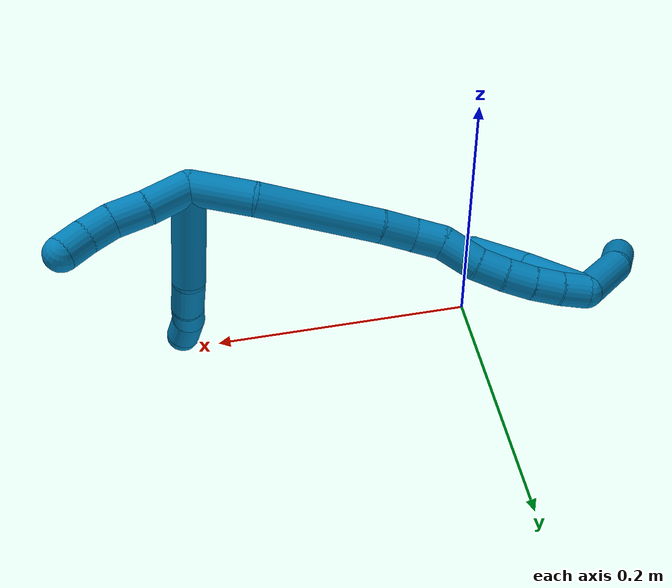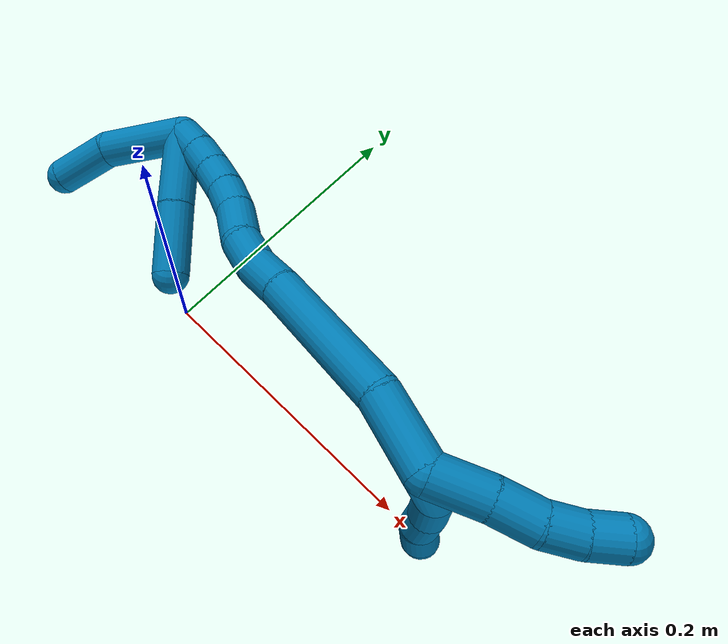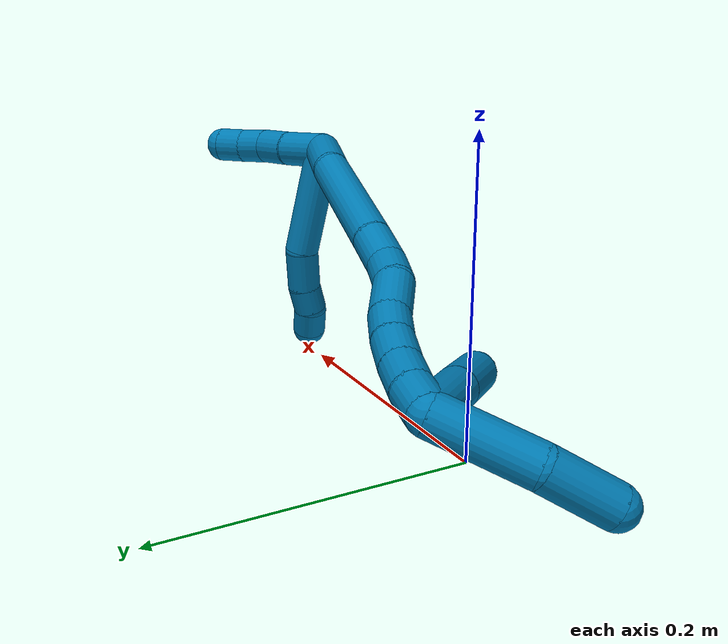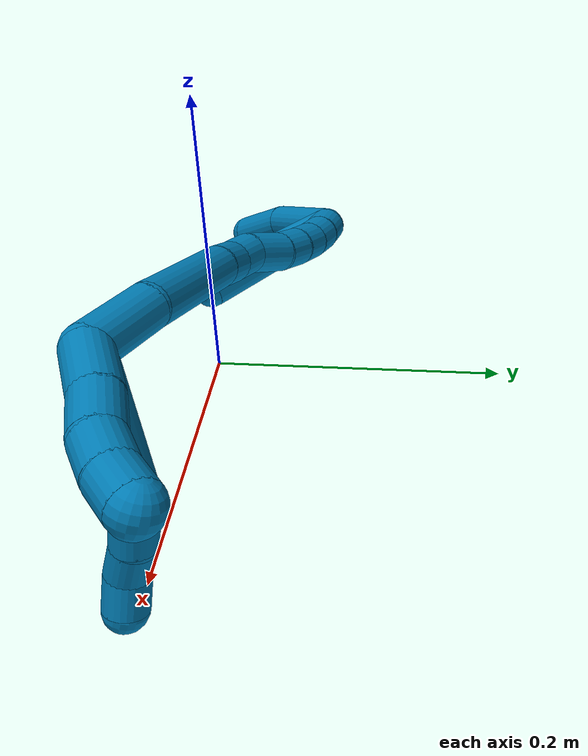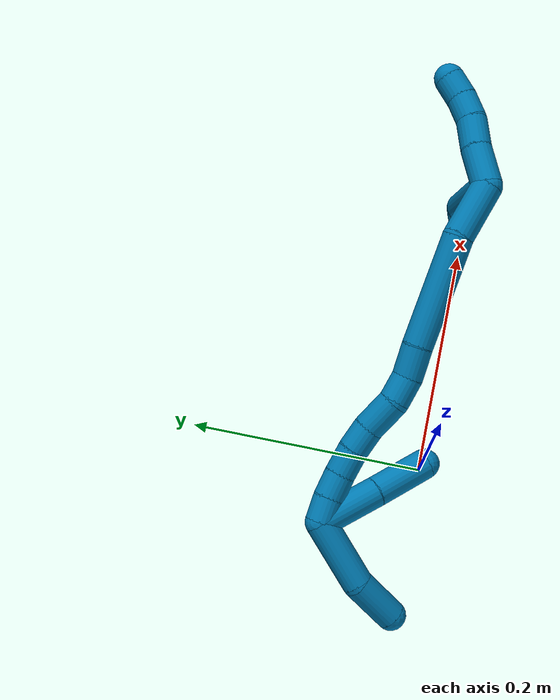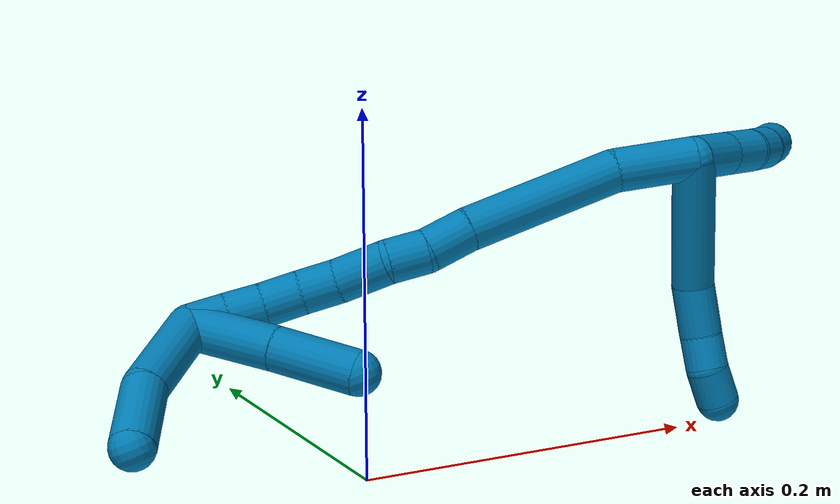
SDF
<sdf version="1.7">
 <world name="default">
  <model name="9">
   <static>0</static>
   <link name="9">
    <collision name="collision-cylinder-e_1_2_8">
     <pose>-0.004129 0.017704 -0.034888 -2.67202 -0.105142 0.433065</pose>
     <geometry><cylinder><radius>0.0125</radius><length>0.07868</length></cylinder></geometry>
     <surface>
      <friction><ode><mu>1.16</mu><mu2>1.16</mu2><slip1>0</slip1><slip2>0</slip2></ode></friction>
      <contact><ode><kp>1e+06</kp><kd>1</kd><max_vel>0</max_vel><min_depth>0.001</min_depth></ode></contact>
     </surface>
    </collision>
    <visual name="visual-cylinder-e_1_2_8">
     <pose>-0.004129 0.017704 -0.034888 -2.67202 -0.105142 0.433065</pose>
     <geometry><cylinder><radius>0.0125</radius><length>0.07868</length></cylinder></geometry>
     <material><ambient>0 0.490196 0.709804 1</ambient></material>
    </visual>
    <collision name="collision-cylinder-e_2_8_9">
     <pose>-0.010255 0.038195 -0.084708 -2.957 -0.13074 1.23116</pose>
     <geometry><cylinder><radius>0.0125</radius><length>0.03064</length></cylinder></geometry>
     <surface>
      <friction><ode><mu>1.16</mu><mu2>1.16</mu2><slip1>0</slip1><slip2>0</slip2></ode></friction>
      <contact><ode><kp>1e+06</kp><kd>1</kd><max_vel>0</max_vel><min_depth>0.001</min_depth></ode></contact>
     </surface>
    </collision>
    <visual name="visual-cylinder-e_2_8_9">
     <pose>-0.010255 0.038195 -0.084708 -2.957 -0.13074 1.23116</pose>
     <geometry><cylinder><radius>0.0125</radius><length>0.03064</length></cylinder></geometry>
     <material><ambient>0 0.490196 0.709804 1</ambient></material>
    </visual>
    <collision name="collision-cylinder-e_3_9_10">
     <pose>-0.01439 0.041214 -0.109407 -3.11795 -0.215432 2.92384</pose>
     <geometry><cylinder><radius>0.0125</radius><length>0.020003</length></cylinder></geometry>
     <surface>
      <friction><ode><mu>1.16</mu><mu2>1.16</mu2><slip1>0</slip1><slip2>0</slip2></ode></friction>
      <contact><ode><kp>1e+06</kp><kd>1</kd><max_vel>0</max_vel><min_depth>0.001</min_depth></ode></contact>
     </surface>
    </collision>
    <visual name="visual-cylinder-e_3_9_10">
     <pose>-0.01439 0.041214 -0.109407 -3.11795 -0.215432 2.92384</pose>
     <geometry><cylinder><radius>0.0125</radius><length>0.020003</length></cylinder></geometry>
     <material><ambient>0 0.490196 0.709804 1</ambient></material>
    </visual>
    <collision name="collision-cylinder-e_4_10_6">
     <pose>-0.015961 0.043403 -0.129309 -2.95077 0.054866 -0.558474</pose>
     <geometry><cylinder><radius>0.0125</radius><length>0.020677</length></cylinder></geometry>
     <surface>
      <friction><ode><mu>1.16</mu><mu2>1.16</mu2><slip1>0</slip1><slip2>0</slip2></ode></friction>
      <contact><ode><kp>1e+06</kp><kd>1</kd><max_vel>0</max_vel><min_depth>0.001</min_depth></ode></contact>
     </surface>
    </collision>
    <visual name="visual-cylinder-e_4_10_6">
     <pose>-0.015961 0.043403 -0.129309 -2.95077 0.054866 -0.558474</pose>
     <geometry><cylinder><radius>0.0125</radius><length>0.020677</length></cylinder></geometry>
     <material><ambient>0 0.490196 0.709804 1</ambient></material>
    </visual>
    <collision name="collision-cylinder-e_1_2_11">
     <pose>0.015001 0.006599 -0.003096 -2.00948 1.11849 -1.5557</pose>
     <geometry><cylinder><radius>0.0125</radius><length>0.033356</length></cylinder></geometry>
     <surface>
      <friction><ode><mu>1.16</mu><mu2>1.16</mu2><slip1>0</slip1><slip2>0</slip2></ode></friction>
      <contact><ode><kp>1e+06</kp><kd>1</kd><max_vel>0</max_vel><min_depth>0.001</min_depth></ode></contact>
     </surface>
    </collision>
    <visual name="visual-cylinder-e_1_2_11">
     <pose>0.015001 0.006599 -0.003096 -2.00948 1.11849 -1.5557</pose>
     <geometry><cylinder><radius>0.0125</radius><length>0.033356</length></cylinder></geometry>
     <material><ambient>0 0.490196 0.709804 1</ambient></material>
    </visual>
    <collision name="collision-cylinder-e_2_11_12">
     <pose>0.041936 0.016952 -0.008832 -2.18359 1.20363 -1.84671</pose>
     <geometry><cylinder><radius>0.0125</radius><length>0.025572</length></cylinder></geometry>
     <surface>
      <friction><ode><mu>1.16</mu><mu2>1.16</mu2><slip1>0</slip1><slip2>0</slip2></ode></friction>
      <contact><ode><kp>1e+06</kp><kd>1</kd><max_vel>0</max_vel><min_depth>0.001</min_depth></ode></contact>
     </surface>
    </collision>
    <visual name="visual-cylinder-e_2_11_12">
     <pose>0.041936 0.016952 -0.008832 -2.18359 1.20363 -1.84671</pose>
     <geometry><cylinder><radius>0.0125</radius><length>0.025572</length></cylinder></geometry>
     <material><ambient>0 0.490196 0.709804 1</ambient></material>
    </visual>
    <collision name="collision-cylinder-e_3_12_13">
     <pose>0.062805 0.025986 -0.013015 -1.85526 1.019 -1.28118</pose>
     <geometry><cylinder><radius>0.0125</radius><length>0.020985</length></cylinder></geometry>
     <surface>
      <friction><ode><mu>1.16</mu><mu2>1.16</mu2><slip1>0</slip1><slip2>0</slip2></ode></friction>
      <contact><ode><kp>1e+06</kp><kd>1</kd><max_vel>0</max_vel><min_depth>0.001</min_depth></ode></contact>
     </surface>
    </collision>
    <visual name="visual-cylinder-e_3_12_13">
     <pose>0.062805 0.025986 -0.013015 -1.85526 1.019 -1.28118</pose>
     <geometry><cylinder><radius>0.0125</radius><length>0.020985</length></cylinder></geometry>
     <material><ambient>0 0.490196 0.709804 1</ambient></material>
    </visual>
    <collision name="collision-cylinder-e_4_13_5">
     <pose>0.079688 0.037394 -0.014938 -1.63265 0.913061 -0.962962</pose>
     <geometry><cylinder><radius>0.0125</radius><length>0.020087</length></cylinder></geometry>
     <surface>
      <friction><ode><mu>1.16</mu><mu2>1.16</mu2><slip1>0</slip1><slip2>0</slip2></ode></friction>
      <contact><ode><kp>1e+06</kp><kd>1</kd><max_vel>0</max_vel><min_depth>0.001</min_depth></ode></contact>
     </surface>
    </collision>
    <visual name="visual-cylinder-e_4_13_5">
     <pose>0.079688 0.037394 -0.014938 -1.63265 0.913061 -0.962962</pose>
     <geometry><cylinder><radius>0.0125</radius><length>0.020087</length></cylinder></geometry>
     <material><ambient>0 0.490196 0.709804 1</ambient></material>
    </visual>
    <collision name="collision-cylinder-e_1_2_14">
     <pose>-0.021171 0.008146 0.005377 -0.987397 -1.13881 0.663503</pose>
     <geometry><cylinder><radius>0.0125</radius><length>0.046625</length></cylinder></geometry>
     <surface>
      <friction><ode><mu>1.16</mu><mu2>1.16</mu2><slip1>0</slip1><slip2>0</slip2></ode></friction>
      <contact><ode><kp>1e+06</kp><kd>1</kd><max_vel>0</max_vel><min_depth>0.001</min_depth></ode></contact>
     </surface>
    </collision>
    <visual name="visual-cylinder-e_1_2_14">
     <pose>-0.021171 0.008146 0.005377 -0.987397 -1.13881 0.663503</pose>
     <geometry><cylinder><radius>0.0125</radius><length>0.046625</length></cylinder></geometry>
     <material><ambient>0 0.490196 0.709804 1</ambient></material>
    </visual>
    <collision name="collision-cylinder-e_2_14_15">
     <pose>-0.086448 0.027696 0.0116 -1.4967 -1.31711 1.24605</pose>
     <geometry><cylinder><radius>0.0125</radius><length>0.09113</length></cylinder></geometry>
     <surface>
      <friction><ode><mu>1.16</mu><mu2>1.16</mu2><slip1>0</slip1><slip2>0</slip2></ode></friction>
      <contact><ode><kp>1e+06</kp><kd>1</kd><max_vel>0</max_vel><min_depth>0.001</min_depth></ode></contact>
     </surface>
    </collision>
    <visual name="visual-cylinder-e_2_14_15">
     <pose>-0.086448 0.027696 0.0116 -1.4967 -1.31711 1.24605</pose>
     <geometry><cylinder><radius>0.0125</radius><length>0.09113</length></cylinder></geometry>
     <material><ambient>0 0.490196 0.709804 1</ambient></material>
    </visual>
    <collision name="collision-cylinder-e_3_15_16">
     <pose>-0.143135 0.042124 0.011426 -1.89634 -1.32235 1.65112</pose>
     <geometry><cylinder><radius>0.0125</radius><length>0.025959</length></cylinder></geometry>
     <surface>
      <friction><ode><mu>1.16</mu><mu2>1.16</mu2><slip1>0</slip1><slip2>0</slip2></ode></friction>
      <contact><ode><kp>1e+06</kp><kd>1</kd><max_vel>0</max_vel><min_depth>0.001</min_depth></ode></contact>
     </surface>
    </collision>
    <visual name="visual-cylinder-e_3_15_16">
     <pose>-0.143135 0.042124 0.011426 -1.89634 -1.32235 1.65112</pose>
     <geometry><cylinder><radius>0.0125</radius><length>0.025959</length></cylinder></geometry>
     <material><ambient>0 0.490196 0.709804 1</ambient></material>
    </visual>
    <collision name="collision-cylinder-e_4_16_17">
     <pose>-0.165864 0.049207 0.011735 -1.25424 -1.17242 0.897098</pose>
     <geometry><cylinder><radius>0.0125</radius><length>0.022021</length></cylinder></geometry>
     <surface>
      <friction><ode><mu>1.16</mu><mu2>1.16</mu2><slip1>0</slip1><slip2>0</slip2></ode></friction>
      <contact><ode><kp>1e+06</kp><kd>1</kd><max_vel>0</max_vel><min_depth>0.001</min_depth></ode></contact>
     </surface>
    </collision>
    <visual name="visual-cylinder-e_4_16_17">
     <pose>-0.165864 0.049207 0.011735 -1.25424 -1.17242 0.897098</pose>
     <geometry><cylinder><radius>0.0125</radius><length>0.022021</length></cylinder></geometry>
     <material><ambient>0 0.490196 0.709804 1</ambient></material>
    </visual>
    <collision name="collision-cylinder-e_5_17_18">
     <pose>-0.187549 0.062491 0.013074 -1.56968 -0.896284 0.895414</pose>
     <geometry><cylinder><radius>0.0125</radius><length>0.029542</length></cylinder></geometry>
     <surface>
      <friction><ode><mu>1.16</mu><mu2>1.16</mu2><slip1>0</slip1><slip2>0</slip2></ode></friction>
      <contact><ode><kp>1e+06</kp><kd>1</kd><max_vel>0</max_vel><min_depth>0.001</min_depth></ode></contact>
     </surface>
    </collision>
    <visual name="visual-cylinder-e_5_17_18">
     <pose>-0.187549 0.062491 0.013074 -1.56968 -0.896284 0.895414</pose>
     <geometry><cylinder><radius>0.0125</radius><length>0.029542</length></cylinder></geometry>
     <material><ambient>0 0.490196 0.709804 1</ambient></material>
    </visual>
    <collision name="collision-cylinder-e_6_18_19">
     <pose>-0.208417 0.076821 0.013994 -1.39456 -1.06356 0.915743</pose>
     <geometry><cylinder><radius>0.0125</radius><length>0.021351</length></cylinder></geometry>
     <surface>
      <friction><ode><mu>1.16</mu><mu2>1.16</mu2><slip1>0</slip1><slip2>0</slip2></ode></friction>
      <contact><ode><kp>1e+06</kp><kd>1</kd><max_vel>0</max_vel><min_depth>0.001</min_depth></ode></contact>
     </surface>
    </collision>
    <visual name="visual-cylinder-e_6_18_19">
     <pose>-0.208417 0.076821 0.013994 -1.39456 -1.06356 0.915743</pose>
     <geometry><cylinder><radius>0.0125</radius><length>0.021351</length></cylinder></geometry>
     <material><ambient>0 0.490196 0.709804 1</ambient></material>
    </visual>
    <collision name="collision-cylinder-e_7_19_20">
     <pose>-0.227914 0.086098 0.015677 -1.38731 -1.17545 1.01182</pose>
     <geometry><cylinder><radius>0.0125</radius><length>0.022032</length></cylinder></geometry>
     <surface>
      <friction><ode><mu>1.16</mu><mu2>1.16</mu2><slip1>0</slip1><slip2>0</slip2></ode></friction>
      <contact><ode><kp>1e+06</kp><kd>1</kd><max_vel>0</max_vel><min_depth>0.001</min_depth></ode></contact>
     </surface>
    </collision>
    <visual name="visual-cylinder-e_7_19_20">
     <pose>-0.227914 0.086098 0.015677 -1.38731 -1.17545 1.01182</pose>
     <geometry><cylinder><radius>0.0125</radius><length>0.022032</length></cylinder></geometry>
     <material><ambient>0 0.490196 0.709804 1</ambient></material>
    </visual>
    <collision name="collision-cylinder-e_8_20_21">
     <pose>-0.247897 0.093474 0.017713 -1.19565 -1.23332 0.899442</pose>
     <geometry><cylinder><radius>0.0125</radius><length>0.020806</length></cylinder></geometry>
     <surface>
      <friction><ode><mu>1.16</mu><mu2>1.16</mu2><slip1>0</slip1><slip2>0</slip2></ode></friction>
      <contact><ode><kp>1e+06</kp><kd>1</kd><max_vel>0</max_vel><min_depth>0.001</min_depth></ode></contact>
     </surface>
    </collision>
    <visual name="visual-cylinder-e_8_20_21">
     <pose>-0.247897 0.093474 0.017713 -1.19565 -1.23332 0.899442</pose>
     <geometry><cylinder><radius>0.0125</radius><length>0.020806</length></cylinder></geometry>
     <material><ambient>0 0.490196 0.709804 1</ambient></material>
    </visual>
    <collision name="collision-cylinder-e_9_21_1">
     <pose>-0.267717 0.098707 0.020087 -1.0696 -1.34362 0.880463</pose>
     <geometry><cylinder><radius>0.0125</radius><length>0.020535</length></cylinder></geometry>
     <surface>
      <friction><ode><mu>1.16</mu><mu2>1.16</mu2><slip1>0</slip1><slip2>0</slip2></ode></friction>
      <contact><ode><kp>1e+06</kp><kd>1</kd><max_vel>0</max_vel><min_depth>0.001</min_depth></ode></contact>
     </surface>
    </collision>
    <visual name="visual-cylinder-e_9_21_1">
     <pose>-0.267717 0.098707 0.020087 -1.0696 -1.34362 0.880463</pose>
     <geometry><cylinder><radius>0.0125</radius><length>0.020535</length></cylinder></geometry>
     <material><ambient>0 0.490196 0.709804 1</ambient></material>
    </visual>
    <collision name="collision-cylinder-e_1_1_22">
     <pose>-0.26421 0.083248 0.00766 2.22956 0.548416 1.0414</pose>
     <geometry><cylinder><radius>0.0125</radius><length>0.051831</length></cylinder></geometry>
     <surface>
      <friction><ode><mu>1.16</mu><mu2>1.16</mu2><slip1>0</slip1><slip2>0</slip2></ode></friction>
      <contact><ode><kp>1e+06</kp><kd>1</kd><max_vel>0</max_vel><min_depth>0.001</min_depth></ode></contact>
     </surface>
    </collision>
    <visual name="visual-cylinder-e_1_1_22">
     <pose>-0.26421 0.083248 0.00766 2.22956 0.548416 1.0414</pose>
     <geometry><cylinder><radius>0.0125</radius><length>0.051831</length></cylinder></geometry>
     <material><ambient>0 0.490196 0.709804 1</ambient></material>
    </visual>
    <collision name="collision-cylinder-e_2_22_4">
     <pose>-0.238058 0.050285 -0.019322 2.28607 0.552581 1.11277</pose>
     <geometry><cylinder><radius>0.0125</radius><length>0.048169</length></cylinder></geometry>
     <surface>
      <friction><ode><mu>1.16</mu><mu2>1.16</mu2><slip1>0</slip1><slip2>0</slip2></ode></friction>
      <contact><ode><kp>1e+06</kp><kd>1</kd><max_vel>0</max_vel><min_depth>0.001</min_depth></ode></contact>
     </surface>
    </collision>
    <visual name="visual-cylinder-e_2_22_4">
     <pose>-0.238058 0.050285 -0.019322 2.28607 0.552581 1.11277</pose>
     <geometry><cylinder><radius>0.0125</radius><length>0.048169</length></cylinder></geometry>
     <material><ambient>0 0.490196 0.709804 1</ambient></material>
    </visual>
    <collision name="collision-cylinder-e_1_1_23">
     <pose>-0.301006 0.085363 0.0123 2.09548 -0.919171 -1.41861</pose>
     <geometry><cylinder><radius>0.0125</radius><length>0.058572</length></cylinder></geometry>
     <surface>
      <friction><ode><mu>1.16</mu><mu2>1.16</mu2><slip1>0</slip1><slip2>0</slip2></ode></friction>
      <contact><ode><kp>1e+06</kp><kd>1</kd><max_vel>0</max_vel><min_depth>0.001</min_depth></ode></contact>
     </surface>
    </collision>
    <visual name="visual-cylinder-e_1_1_23">
     <pose>-0.301006 0.085363 0.0123 2.09548 -0.919171 -1.41861</pose>
     <geometry><cylinder><radius>0.0125</radius><length>0.058572</length></cylinder></geometry>
     <material><ambient>0 0.490196 0.709804 1</ambient></material>
    </visual>
    <collision name="collision-cylinder-e_2_23_3">
     <pose>-0.336917 0.058034 -0.007853 2.326 -0.655453 -1.3335</pose>
     <geometry><cylinder><radius>0.0125</radius><length>0.041428</length></cylinder></geometry>
     <surface>
      <friction><ode><mu>1.16</mu><mu2>1.16</mu2><slip1>0</slip1><slip2>0</slip2></ode></friction>
      <contact><ode><kp>1e+06</kp><kd>1</kd><max_vel>0</max_vel><min_depth>0.001</min_depth></ode></contact>
     </surface>
    </collision>
    <visual name="visual-cylinder-e_2_23_3">
     <pose>-0.336917 0.058034 -0.007853 2.326 -0.655453 -1.3335</pose>
     <geometry><cylinder><radius>0.0125</radius><length>0.041428</length></cylinder></geometry>
     <material><ambient>0 0.490196 0.709804 1</ambient></material>
    </visual>
    <collision name="collision-sphere-3">
     <pose>-0.349542 0.046077 -0.019109 0 -0 0</pose>
     <geometry><sphere><radius>0.0125</radius></sphere></geometry>
     <surface>
      <friction><ode><mu>1.16</mu><mu2>1.16</mu2><slip1>0</slip1><slip2>0</slip2></ode></friction>
      <contact><ode><kp>1e+06</kp><kd>1</kd><max_vel>0</max_vel><min_depth>0.001</min_depth></ode></contact>
     </surface>
    </collision>
    <visual name="visual-sphere-3">
     <pose>-0.349542 0.046077 -0.019109 0 -0 0</pose>
     <geometry><sphere><radius>0.0125</radius></sphere></geometry>
     <material><ambient>0 0.490196 0.709804 1</ambient></material>
    </visual>
    <collision name="collision-sphere-23">
     <pose>-0.324291 0.069991 0.003403 0 -0 0</pose>
     <geometry><sphere><radius>0.0125</radius></sphere></geometry>
     <surface>
      <friction><ode><mu>1.16</mu><mu2>1.16</mu2><slip1>0</slip1><slip2>0</slip2></ode></friction>
      <contact><ode><kp>1e+06</kp><kd>1</kd><max_vel>0</max_vel><min_depth>0.001</min_depth></ode></contact>
     </surface>
    </collision>
    <visual name="visual-sphere-23">
     <pose>-0.324291 0.069991 0.003403 0 -0 0</pose>
     <geometry><sphere><radius>0.0125</radius></sphere></geometry>
     <material><ambient>0 0.490196 0.709804 1</ambient></material>
    </visual>
    <collision name="collision-sphere-4">
     <pose>-0.225416 0.034809 -0.032766 0 -0 0</pose>
     <geometry><sphere><radius>0.0125</radius></sphere></geometry>
     <surface>
      <friction><ode><mu>1.16</mu><mu2>1.16</mu2><slip1>0</slip1><slip2>0</slip2></ode></friction>
      <contact><ode><kp>1e+06</kp><kd>1</kd><max_vel>0</max_vel><min_depth>0.001</min_depth></ode></contact>
     </surface>
    </collision>
    <visual name="visual-sphere-4">
     <pose>-0.225416 0.034809 -0.032766 0 -0 0</pose>
     <geometry><sphere><radius>0.0125</radius></sphere></geometry>
     <material><ambient>0 0.490196 0.709804 1</ambient></material>
    </visual>
    <collision name="collision-sphere-22">
     <pose>-0.250699 0.06576 -0.005877 0 -0 0</pose>
     <geometry><sphere><radius>0.0125</radius></sphere></geometry>
     <surface>
      <friction><ode><mu>1.16</mu><mu2>1.16</mu2><slip1>0</slip1><slip2>0</slip2></ode></friction>
      <contact><ode><kp>1e+06</kp><kd>1</kd><max_vel>0</max_vel><min_depth>0.001</min_depth></ode></contact>
     </surface>
    </collision>
    <visual name="visual-sphere-22">
     <pose>-0.250699 0.06576 -0.005877 0 -0 0</pose>
     <geometry><sphere><radius>0.0125</radius></sphere></geometry>
     <material><ambient>0 0.490196 0.709804 1</ambient></material>
    </visual>
    <collision name="collision-sphere-1">
     <pose>-0.27772 0.100735 0.021198 0 -0 0</pose>
     <geometry><sphere><radius>0.0125</radius></sphere></geometry>
     <surface>
      <friction><ode><mu>1.16</mu><mu2>1.16</mu2><slip1>0</slip1><slip2>0</slip2></ode></friction>
      <contact><ode><kp>1e+06</kp><kd>1</kd><max_vel>0</max_vel><min_depth>0.001</min_depth></ode></contact>
     </surface>
    </collision>
    <visual name="visual-sphere-1">
     <pose>-0.27772 0.100735 0.021198 0 -0 0</pose>
     <geometry><sphere><radius>0.0125</radius></sphere></geometry>
     <material><ambient>0 0.490196 0.709804 1</ambient></material>
    </visual>
    <collision name="collision-sphere-21">
     <pose>-0.257713 0.096679 0.018975 0 -0 0</pose>
     <geometry><sphere><radius>0.0125</radius></sphere></geometry>
     <surface>
      <friction><ode><mu>1.16</mu><mu2>1.16</mu2><slip1>0</slip1><slip2>0</slip2></ode></friction>
      <contact><ode><kp>1e+06</kp><kd>1</kd><max_vel>0</max_vel><min_depth>0.001</min_depth></ode></contact>
     </surface>
    </collision>
    <visual name="visual-sphere-21">
     <pose>-0.257713 0.096679 0.018975 0 -0 0</pose>
     <geometry><sphere><radius>0.0125</radius></sphere></geometry>
     <material><ambient>0 0.490196 0.709804 1</ambient></material>
    </visual>
    <collision name="collision-sphere-11">
     <pose>0.030002 0.013198 -0.006192 0 -0 0</pose>
     <geometry><sphere><radius>0.0125</radius></sphere></geometry>
     <surface>
      <friction><ode><mu>1.16</mu><mu2>1.16</mu2><slip1>0</slip1><slip2>0</slip2></ode></friction>
      <contact><ode><kp>1e+06</kp><kd>1</kd><max_vel>0</max_vel><min_depth>0.001</min_depth></ode></contact>
     </surface>
    </collision>
    <visual name="visual-sphere-11">
     <pose>0.030002 0.013198 -0.006192 0 -0 0</pose>
     <geometry><sphere><radius>0.0125</radius></sphere></geometry>
     <material><ambient>0 0.490196 0.709804 1</ambient></material>
    </visual>
    <collision name="collision-sphere-6">
     <pose>-0.015394 0.045361 -0.139445 0 -0 0</pose>
     <geometry><sphere><radius>0.0125</radius></sphere></geometry>
     <surface>
      <friction><ode><mu>1.16</mu><mu2>1.16</mu2><slip1>0</slip1><slip2>0</slip2></ode></friction>
      <contact><ode><kp>1e+06</kp><kd>1</kd><max_vel>0</max_vel><min_depth>0.001</min_depth></ode></contact>
     </surface>
    </collision>
    <visual name="visual-sphere-6">
     <pose>-0.015394 0.045361 -0.139445 0 -0 0</pose>
     <geometry><sphere><radius>0.0125</radius></sphere></geometry>
     <material><ambient>0 0.490196 0.709804 1</ambient></material>
    </visual>
    <collision name="collision-sphere-10">
     <pose>-0.016528 0.041445 -0.119174 0 -0 0</pose>
     <geometry><sphere><radius>0.0125</radius></sphere></geometry>
     <surface>
      <friction><ode><mu>1.16</mu><mu2>1.16</mu2><slip1>0</slip1><slip2>0</slip2></ode></friction>
      <contact><ode><kp>1e+06</kp><kd>1</kd><max_vel>0</max_vel><min_depth>0.001</min_depth></ode></contact>
     </surface>
    </collision>
    <visual name="visual-sphere-10">
     <pose>-0.016528 0.041445 -0.119174 0 -0 0</pose>
     <geometry><sphere><radius>0.0125</radius></sphere></geometry>
     <material><ambient>0 0.490196 0.709804 1</ambient></material>
    </visual>
    <collision name="collision-sphere-9">
     <pose>-0.012252 0.040983 -0.099639 0 -0 0</pose>
     <geometry><sphere><radius>0.0125</radius></sphere></geometry>
     <surface>
      <friction><ode><mu>1.16</mu><mu2>1.16</mu2><slip1>0</slip1><slip2>0</slip2></ode></friction>
      <contact><ode><kp>1e+06</kp><kd>1</kd><max_vel>0</max_vel><min_depth>0.001</min_depth></ode></contact>
     </surface>
    </collision>
    <visual name="visual-sphere-9">
     <pose>-0.012252 0.040983 -0.099639 0 -0 0</pose>
     <geometry><sphere><radius>0.0125</radius></sphere></geometry>
     <material><ambient>0 0.490196 0.709804 1</ambient></material>
    </visual>
    <collision name="collision-sphere-2">
     <geometry><sphere><radius>0.0125</radius></sphere></geometry>
     <surface>
      <friction><ode><mu>1.16</mu><mu2>1.16</mu2><slip1>0</slip1><slip2>0</slip2></ode></friction>
      <contact><ode><kp>1e+06</kp><kd>1</kd><max_vel>0</max_vel><min_depth>0.001</min_depth></ode></contact>
     </surface>
    </collision>
    <visual name="visual-sphere-2">
     <geometry><sphere><radius>0.0125</radius></sphere></geometry>
     <material><ambient>0 0.490196 0.709804 1</ambient></material>
    </visual>
    <collision name="collision-sphere-19">
     <pose>-0.217748 0.081926 0.014903 0 -0 0</pose>
     <geometry><sphere><radius>0.0125</radius></sphere></geometry>
     <surface>
      <friction><ode><mu>1.16</mu><mu2>1.16</mu2><slip1>0</slip1><slip2>0</slip2></ode></friction>
      <contact><ode><kp>1e+06</kp><kd>1</kd><max_vel>0</max_vel><min_depth>0.001</min_depth></ode></contact>
     </surface>
    </collision>
    <visual name="visual-sphere-19">
     <pose>-0.217748 0.081926 0.014903 0 -0 0</pose>
     <geometry><sphere><radius>0.0125</radius></sphere></geometry>
     <material><ambient>0 0.490196 0.709804 1</ambient></material>
    </visual>
    <collision name="collision-sphere-8">
     <pose>-0.008257 0.035407 -0.069777 0 -0 0</pose>
     <geometry><sphere><radius>0.0125</radius></sphere></geometry>
     <surface>
      <friction><ode><mu>1.16</mu><mu2>1.16</mu2><slip1>0</slip1><slip2>0</slip2></ode></friction>
      <contact><ode><kp>1e+06</kp><kd>1</kd><max_vel>0</max_vel><min_depth>0.001</min_depth></ode></contact>
     </surface>
    </collision>
    <visual name="visual-sphere-8">
     <pose>-0.008257 0.035407 -0.069777 0 -0 0</pose>
     <geometry><sphere><radius>0.0125</radius></sphere></geometry>
     <material><ambient>0 0.490196 0.709804 1</ambient></material>
    </visual>
    <collision name="collision-sphere-12">
     <pose>0.053869 0.020707 -0.011471 0 -0 0</pose>
     <geometry><sphere><radius>0.0125</radius></sphere></geometry>
     <surface>
      <friction><ode><mu>1.16</mu><mu2>1.16</mu2><slip1>0</slip1><slip2>0</slip2></ode></friction>
      <contact><ode><kp>1e+06</kp><kd>1</kd><max_vel>0</max_vel><min_depth>0.001</min_depth></ode></contact>
     </surface>
    </collision>
    <visual name="visual-sphere-12">
     <pose>0.053869 0.020707 -0.011471 0 -0 0</pose>
     <geometry><sphere><radius>0.0125</radius></sphere></geometry>
     <material><ambient>0 0.490196 0.709804 1</ambient></material>
    </visual>
    <collision name="collision-sphere-13">
     <pose>0.07174 0.031265 -0.014559 0 -0 0</pose>
     <geometry><sphere><radius>0.0125</radius></sphere></geometry>
     <surface>
      <friction><ode><mu>1.16</mu><mu2>1.16</mu2><slip1>0</slip1><slip2>0</slip2></ode></friction>
      <contact><ode><kp>1e+06</kp><kd>1</kd><max_vel>0</max_vel><min_depth>0.001</min_depth></ode></contact>
     </surface>
    </collision>
    <visual name="visual-sphere-13">
     <pose>0.07174 0.031265 -0.014559 0 -0 0</pose>
     <geometry><sphere><radius>0.0125</radius></sphere></geometry>
     <material><ambient>0 0.490196 0.709804 1</ambient></material>
    </visual>
    <collision name="collision-sphere-5">
     <pose>0.087636 0.043522 -0.015318 0 -0 0</pose>
     <geometry><sphere><radius>0.0125</radius></sphere></geometry>
     <surface>
      <friction><ode><mu>1.16</mu><mu2>1.16</mu2><slip1>0</slip1><slip2>0</slip2></ode></friction>
      <contact><ode><kp>1e+06</kp><kd>1</kd><max_vel>0</max_vel><min_depth>0.001</min_depth></ode></contact>
     </surface>
    </collision>
    <visual name="visual-sphere-5">
     <pose>0.087636 0.043522 -0.015318 0 -0 0</pose>
     <geometry><sphere><radius>0.0125</radius></sphere></geometry>
     <material><ambient>0 0.490196 0.709804 1</ambient></material>
    </visual>
    <collision name="collision-sphere-14">
     <pose>-0.042342 0.016292 0.010753 0 -0 0</pose>
     <geometry><sphere><radius>0.0125</radius></sphere></geometry>
     <surface>
      <friction><ode><mu>1.16</mu><mu2>1.16</mu2><slip1>0</slip1><slip2>0</slip2></ode></friction>
      <contact><ode><kp>1e+06</kp><kd>1</kd><max_vel>0</max_vel><min_depth>0.001</min_depth></ode></contact>
     </surface>
    </collision>
    <visual name="visual-sphere-14">
     <pose>-0.042342 0.016292 0.010753 0 -0 0</pose>
     <geometry><sphere><radius>0.0125</radius></sphere></geometry>
     <material><ambient>0 0.490196 0.709804 1</ambient></material>
    </visual>
    <collision name="collision-sphere-15">
     <pose>-0.130555 0.0391 0.012446 0 -0 0</pose>
     <geometry><sphere><radius>0.0125</radius></sphere></geometry>
     <surface>
      <friction><ode><mu>1.16</mu><mu2>1.16</mu2><slip1>0</slip1><slip2>0</slip2></ode></friction>
      <contact><ode><kp>1e+06</kp><kd>1</kd><max_vel>0</max_vel><min_depth>0.001</min_depth></ode></contact>
     </surface>
    </collision>
    <visual name="visual-sphere-15">
     <pose>-0.130555 0.0391 0.012446 0 -0 0</pose>
     <geometry><sphere><radius>0.0125</radius></sphere></geometry>
     <material><ambient>0 0.490196 0.709804 1</ambient></material>
    </visual>
    <collision name="collision-sphere-16">
     <pose>-0.155716 0.045148 0.010405 0 -0 0</pose>
     <geometry><sphere><radius>0.0125</radius></sphere></geometry>
     <surface>
      <friction><ode><mu>1.16</mu><mu2>1.16</mu2><slip1>0</slip1><slip2>0</slip2></ode></friction>
      <contact><ode><kp>1e+06</kp><kd>1</kd><max_vel>0</max_vel><min_depth>0.001</min_depth></ode></contact>
     </surface>
    </collision>
    <visual name="visual-sphere-16">
     <pose>-0.155716 0.045148 0.010405 0 -0 0</pose>
     <geometry><sphere><radius>0.0125</radius></sphere></geometry>
     <material><ambient>0 0.490196 0.709804 1</ambient></material>
    </visual>
    <collision name="collision-sphere-17">
     <pose>-0.176013 0.053266 0.013064 0 -0 0</pose>
     <geometry><sphere><radius>0.0125</radius></sphere></geometry>
     <surface>
      <friction><ode><mu>1.16</mu><mu2>1.16</mu2><slip1>0</slip1><slip2>0</slip2></ode></friction>
      <contact><ode><kp>1e+06</kp><kd>1</kd><max_vel>0</max_vel><min_depth>0.001</min_depth></ode></contact>
     </surface>
    </collision>
    <visual name="visual-sphere-17">
     <pose>-0.176013 0.053266 0.013064 0 -0 0</pose>
     <geometry><sphere><radius>0.0125</radius></sphere></geometry>
     <material><ambient>0 0.490196 0.709804 1</ambient></material>
    </visual>
    <collision name="collision-sphere-18">
     <pose>-0.199085 0.071716 0.013085 0 -0 0</pose>
     <geometry><sphere><radius>0.0125</radius></sphere></geometry>
     <surface>
      <friction><ode><mu>1.16</mu><mu2>1.16</mu2><slip1>0</slip1><slip2>0</slip2></ode></friction>
      <contact><ode><kp>1e+06</kp><kd>1</kd><max_vel>0</max_vel><min_depth>0.001</min_depth></ode></contact>
     </surface>
    </collision>
    <visual name="visual-sphere-18">
     <pose>-0.199085 0.071716 0.013085 0 -0 0</pose>
     <geometry><sphere><radius>0.0125</radius></sphere></geometry>
     <material><ambient>0 0.490196 0.709804 1</ambient></material>
    </visual>
    <collision name="collision-sphere-20">
     <pose>-0.23808 0.090269 0.016451 0 -0 0</pose>
     <geometry><sphere><radius>0.0125</radius></sphere></geometry>
     <surface>
      <friction><ode><mu>1.16</mu><mu2>1.16</mu2><slip1>0</slip1><slip2>0</slip2></ode></friction>
      <contact><ode><kp>1e+06</kp><kd>1</kd><max_vel>0</max_vel><min_depth>0.001</min_depth></ode></contact>
     </surface>
    </collision>
    <visual name="visual-sphere-20">
     <pose>-0.23808 0.090269 0.016451 0 -0 0</pose>
     <geometry><sphere><radius>0.0125</radius></sphere></geometry>
     <material><ambient>0 0.490196 0.709804 1</ambient></material>
    </visual>
    <inertial>
     <pose>-0.127221 0.046416 -0.010092 0 -0 0</pose>
     <mass>0.75</mass>
     <inertia><ixx>9e-05</ixx><ixy>0</ixy><ixz>0</ixz><iyy>0.000117</iyy><iyz>0</iyz><izz>5.2e-05</izz></inertia>
    </inertial>
   </link>
   <pose>0.203633 -0.004827 0.159037 -0.311629 -0.26062 0.092724</pose>
  </model>
 </world>
</sdf>
